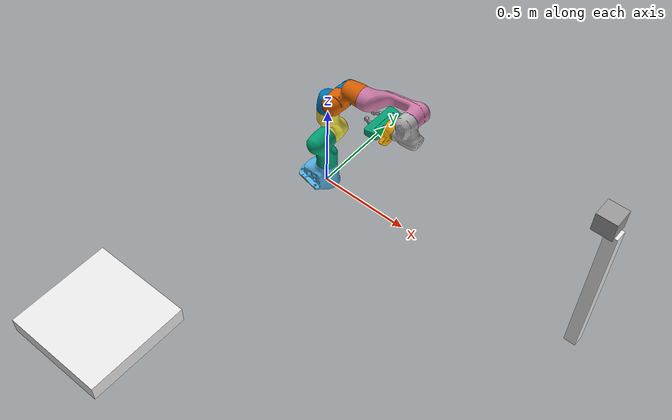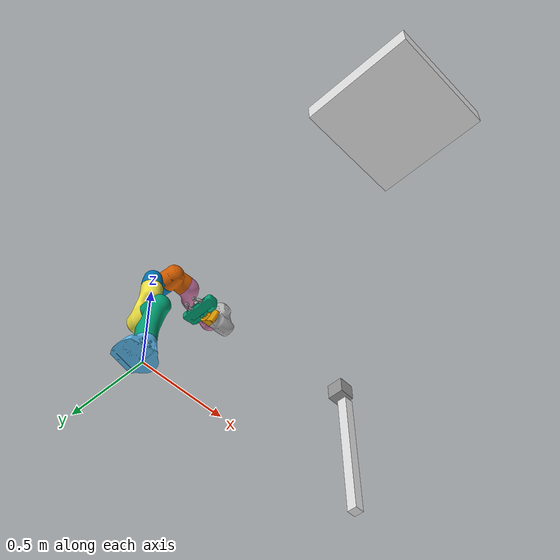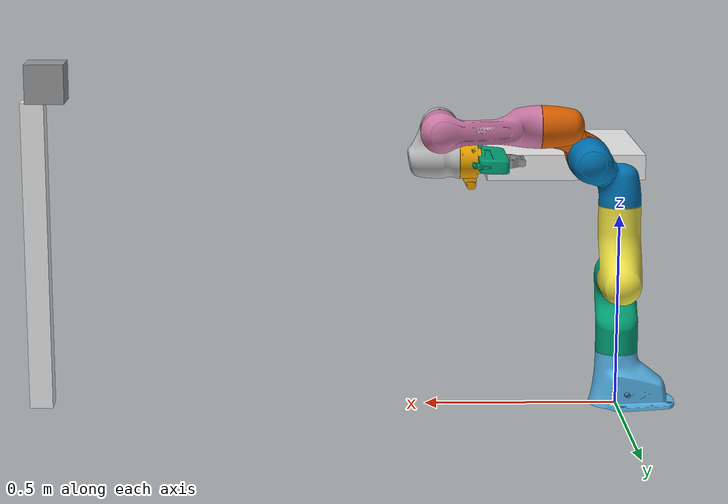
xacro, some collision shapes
<?xml version="1.0" encoding="utf-8"?>
<robot xmlns:xacro="http://www.ros.org/wiki/xacro" name="panda">
  <xacro:include filename="$(find encoderless_robots)/desc/updated_panda_arm.xacro"/>
  <xacro:include filename="$(find encoderless_robots)/desc/updated_hand.xacro"/>
  <xacro:include filename="$(find encoderless_robots)/desc/camera_on_stand.xacro"/>

  <xacro:updated_panda_arm />

  <xacro:updated_hand ns="panda" rpy="0 0 0" connected_to="panda_link8"/>

  <xacro:camera_on_stand />
  <!-- Gazebo control plugin -->
  <gazebo>
    <plugin name="gazebo_ros_control" filename="libmy_gazebo_ros_control.so">
      <robotNamespace>/panda</robotNamespace>
    </plugin>
  </gazebo>

<gazebo reference="panda_leftfinger">
  <material>Gazebo/Gray</material>
</gazebo>

<gazebo reference="panda_rightfinger">
  <material>Gazebo/Gray</material>
</gazebo>

</robot>

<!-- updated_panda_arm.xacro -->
<robot xmlns:xacro="http://www.ros.org/wiki/xacro" name="panda">
  <xacro:macro name="updated_panda_arm" params="arm_id:='panda' description_pkg:='franka_description' connected_to:='' xyz:='0 0 0' rpy:='0 0 0'">

    <xacro:unless value="${not connected_to}">
      <joint name="${arm_id}_joint_${connected_to}" type="fixed">
        <parent link="${connected_to}"/>
        <child link="${arm_id}_link0"/>
        <origin rpy="${rpy}" xyz="${xyz}"/>
      </joint>
    </xacro:unless>

    <link name="world"/>

    <joint name="fixed" type="fixed">
      <parent link="world"/>
      <child link="${arm_id}_link0"/>
    </joint>

    <link name="${arm_id}_link0">
      <visual>
        <geometry>
          <mesh filename="package://${description_pkg}/meshes/visual/link0.dae"/>
        </geometry>
      </visual>
      <collision>
        <geometry>
          <mesh filename="package://${description_pkg}/meshes/collision/link0.stl"/>
        </geometry>
      </collision>
      <inertial>
        <mass value="3.06357" />
        <inertia ixx="0.03" iyy="0.03" izz="0.03" ixy="0.0" ixz="0.0" iyz="0.0" />
      </inertial>
    </link>

    <link name="${arm_id}_link1">
      <visual>
        <geometry>
          <mesh filename="package://${description_pkg}/meshes/visual/link1.dae"/>
        </geometry>
      </visual>
      <collision>
        <geometry>
          <mesh filename="package://${description_pkg}/meshes/collision/link1.stl"/>
        </geometry>
      </collision>
      <inertial>
        <mass value="2.34471" />
        <inertia ixx="0.03" iyy="0.03" izz="0.03" ixy="0.0" ixz="0.0" iyz="0.0" />
      </inertial>
    </link>

    <joint name="${arm_id}_joint1" type="revolute">
      <safety_controller k_position="100.0" k_velocity="40.0" soft_lower_limit="-2.8973" soft_upper_limit="2.8973"/>
      <origin rpy="0 0 0" xyz="0 0 0.333"/>
      <parent link="${arm_id}_link0"/>
      <child link="${arm_id}_link1"/>
      <axis xyz="0 0 1"/>
      <limit effort="87" lower="-2.8973" upper="2.8973" velocity="2.1750"/>
    </joint>

    <link name="${arm_id}_link2">
      <visual>
        <geometry>
          <mesh filename="package://${description_pkg}/meshes/visual/link2.dae"/>
        </geometry>
      </visual>
      <collision>
        <geometry>
          <mesh filename="package://${description_pkg}/meshes/collision/link2.stl"/>
        </geometry>
      </collision>
      <inertial>
        <mass value="2.36414" />
        <inertia ixx="0.03" iyy="0.03" izz="0.03" ixy="0.0" ixz="0.0" iyz="0.0" />
      </inertial>
    </link>

    <joint name="${arm_id}_joint2" type="revolute">
      <safety_controller k_position="100.0" k_velocity="40.0" soft_lower_limit="-1.7628" soft_upper_limit="1.7628"/>
      <origin rpy="${-pi/2} 0 0" xyz="0 0 0"/>
      <parent link="${arm_id}_link1"/>
      <child link="${arm_id}_link2"/>
      <axis xyz="0 0 1"/>
      <limit effort="87" lower="-1.7628" upper="1.7628" velocity="2.1750"/>
    </joint>

    <link name="${arm_id}_link3">
      <visual>
        <geometry>
          <mesh filename="package://${description_pkg}/meshes/visual/link3.dae"/>
        </geometry>
      </visual>
      <collision>
        <geometry>
          <mesh filename="package://${description_pkg}/meshes/collision/link3.stl"/>
        </geometry>
      </collision>
      <inertial>
        <mass value="2.38050" />
        <inertia ixx="0.03" iyy="0.03" izz="0.03" ixy="0.0" ixz="0.0" iyz="0.0" />
      </inertial>
    </link>

    <joint name="${arm_id}_joint3" type="revolute">
      <safety_controller k_position="100.0" k_velocity="40.0" soft_lower_limit="-2.8973" soft_upper_limit="2.8973"/>
      <origin rpy="${pi/2} 0 0" xyz="0 -0.316 0"/>
      <parent link="${arm_id}_link2"/>
      <child link="${arm_id}_link3"/>
      <axis xyz="0 0 1"/>
      <limit effort="87" lower="-2.8973" upper="2.8973" velocity="2.1750"/>
    </joint>

    <link name="${arm_id}_link4">
      <visual>
        <geometry>
          <mesh filename="package://${description_pkg}/meshes/visual/link4.dae"/>
        </geometry>
      </visual>
      <collision>
        <geometry>
          <mesh filename="package://${description_pkg}/meshes/collision/link4.stl"/>
        </geometry>
      </collision>
      <inertial>
        <mass value="2.42754" />
        <inertia ixx="0.03" iyy="0.03" izz="0.03" ixy="0.0" ixz="0.0" iyz="0.0" />
      </inertial>
    </link>

    <joint name="${arm_id}_joint4" type="revolute">
      <safety_controller k_position="100.0" k_velocity="40.0" soft_lower_limit="-3.0718" soft_upper_limit="-0.0698"/>
      <origin rpy="${pi/2} 0 0" xyz="0.0825 0 0"/>
      <parent link="${arm_id}_link3"/>
      <child link="${arm_id}_link4"/>
      <axis xyz="0 0 1"/>
      <limit effort="87" lower="-3.0718" upper="-0.0698" velocity="2.1750"/>
    </joint>

    <link name="${arm_id}_link5">
      <visual>
        <geometry>
          <mesh filename="package://${description_pkg}/meshes/visual/link5.dae"/>
        </geometry>
      </visual>
      <collision>
        <geometry>
          <mesh filename="package://${description_pkg}/meshes/collision/link5.stl"/>
        </geometry>
      </collision>
      <inertial>
        <mass value="3.49611" />
        <inertia ixx="0.03" iyy="0.03" izz="0.03" ixy="0.0" ixz="0.0" iyz="0.0" />
      </inertial>
    </link>

    <joint name="${arm_id}_joint5" type="revolute">
      <safety_controller k_position="100.0" k_velocity="40.0" soft_lower_limit="-2.8973" soft_upper_limit="2.8973"/>
      <origin rpy="${-pi/2} 0 0" xyz="-0.0825 0.384 0"/>
      <parent link="${arm_id}_link4"/>
      <child link="${arm_id}_link5"/>
      <axis xyz="0 0 1"/>
      <limit effort="12" lower="-2.8973" upper="2.8973" velocity="2.6100"/>
    </joint>

    <link name="${arm_id}_link6">
      <visual>
        <geometry>
          <mesh filename="package://${description_pkg}/meshes/visual/link6.dae"/>
        </geometry>
      </visual>
      <collision>
        <geometry>
          <mesh filename="package://${description_pkg}/meshes/collision/link6.stl"/>
        </geometry>
      </collision>
      <inertial>
        <mass value="1.46736" />
        <inertia ixx="0.03" iyy="0.03" izz="0.03" ixy="0.0" ixz="0.0" iyz="0.0" />
      </inertial>
    </link>

    <joint name="${arm_id}_joint6" type="revolute">
      <safety_controller k_position="100.0" k_velocity="40.0" soft_lower_limit="-0.0175" soft_upper_limit="3.7525"/>
      <origin rpy="${pi/2} 0 0" xyz="0 0 0"/>
      <parent link="${arm_id}_link5"/>
      <child link="${arm_id}_link6"/>
      <axis xyz="0 0 1"/>
      <limit effort="12" lower="-0.0175" upper="3.7525" velocity="2.6100"/>
    </joint>

    <link name="${arm_id}_link7">
      <visual>
        <geometry>
          <mesh filename="package://${description_pkg}/meshes/visual/link7.dae"/>
        </geometry>
      </visual>
      <collision>
        <geometry>
          <mesh filename="package://${description_pkg}/meshes/collision/link7.stl"/>
        </geometry>
      </collision>
      <inertial>
        <mass value="0.45606" />
        <inertia ixx="0.03" iyy="0.03" izz="0.03" ixy="0.0" ixz="0.0" iyz="0.0" />
      </inertial>
    </link>

    <joint name="${arm_id}_joint7" type="revolute">
      <safety_controller k_position="100.0" k_velocity="40.0" soft_lower_limit="-2.8973" soft_upper_limit="2.8973"/>
      <origin rpy="${pi/2} 0 0" xyz="0.088 0 0"/>
      <parent link="${arm_id}_link6"/>
      <child link="${arm_id}_link7"/>
      <axis xyz="0 0 1"/>
      <limit effort="12" lower="-2.8973" upper="2.8973" velocity="2.6100"/>
    </joint>

    <link name="${arm_id}_link8"/>

    <joint name="${arm_id}_joint8" type="fixed">
      <origin rpy="0 0 0" xyz="0 0 0.107"/>
      <parent link="${arm_id}_link7"/>
      <child link="${arm_id}_link8"/>
      <axis xyz="0 0 0"/>
    </joint>

    <!-- Transmissions of the robot arm - to be able to move each joint ============== -->
    <transmission name="tran1">
      <type>transmission_interface/SimpleTransmission</type>
      <joint name="${arm_id}_joint1">
	<hardwareInterface>hardware_interface/EffortJointInterface</hardwareInterface>
      </joint>
      <actuator name="motor1">
	<hardwareInterface>hardware_interface/EffortJointInterface</hardwareInterface>
	<mechanicalReduction>1</mechanicalReduction>
      </actuator>
    </transmission>

    <transmission name="tran2">
      <type>transmission_interface/SimpleTransmission</type>
      <joint name="${arm_id}_joint2">
	<hardwareInterface>hardware_interface/EffortJointInterface</hardwareInterface>
      </joint>
      <actuator name="motor2">
	<hardwareInterface>hardware_interface/EffortJointInterface</hardwareInterface>
	<mechanicalReduction>1</mechanicalReduction>
      </actuator>
    </transmission>

    <transmission name="tran3">
      <type>transmission_interface/SimpleTransmission</type>
      <joint name="${arm_id}_joint3">
	<hardwareInterface>hardware_interface/EffortJointInterface</hardwareInterface>
      </joint>
      <actuator name="motor3">
	<hardwareInterface>hardware_interface/EffortJointInterface</hardwareInterface>
	<mechanicalReduction>1</mechanicalReduction>
      </actuator>
    </transmission>

    <transmission name="tran4">
      <type>transmission_interface/SimpleTransmission</type>
      <joint name="${arm_id}_joint4">
	<hardwareInterface>hardware_interface/EffortJointInterface</hardwareInterface>
      </joint>
      <actuator name="motor4">
	<hardwareInterface>hardware_interface/EffortJointInterface</hardwareInterface>
	<mechanicalReduction>1</mechanicalReduction>
      </actuator>
    </transmission>

    <transmission name="tran5">
      <type>transmission_interface/SimpleTransmission</type>
      <joint name="${arm_id}_joint5">
	<hardwareInterface>hardware_interface/EffortJointInterface</hardwareInterface>
      </joint>
      <actuator name="motor5">
	<hardwareInterface>hardware_interface/EffortJointInterface</hardwareInterface>
	<mechanicalReduction>1</mechanicalReduction>
      </actuator>
    </transmission>

    <transmission name="tran6">
      <type>transmission_interface/SimpleTransmission</type>
      <joint name="${arm_id}_joint6">
	<hardwareInterface>hardware_interface/EffortJointInterface</hardwareInterface>
      </joint>
      <actuator name="motor6">
	<hardwareInterface>hardware_interface/EffortJointInterface</hardwareInterface>
	<mechanicalReduction>1</mechanicalReduction>
      </actuator>
    </transmission>

    <transmission name="tran7">
      <type>transmission_interface/SimpleTransmission</type>
      <joint name="${arm_id}_joint7">
	<hardwareInterface>hardware_interface/EffortJointInterface</hardwareInterface>
      </joint>
      <actuator name="motor7">
	<hardwareInterface>hardware_interface/EffortJointInterface</hardwareInterface>
	<mechanicalReduction>1</mechanicalReduction>
      </actuator>
    </transmission>
  </xacro:macro>

</robot>

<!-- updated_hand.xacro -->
<robot xmlns:xacro="http://www.ros.org/wiki/xacro" name="hand">
  <xacro:macro name="updated_hand" params="connected_to:='' ns:='' rpy:='0 0 0' xyz:='0 0 0' ">
    <xacro:unless value="${connected_to == ''}">
      <joint name="${ns}_hand_joint" type="fixed">
        <parent link="${connected_to}"/>
        <child link="${ns}_hand"/>
        <origin xyz="${xyz}" rpy="${rpy}"/>
      </joint>
    </xacro:unless>
    <link name="${ns}_hand">
      <visual>
        <geometry>
          <mesh filename="package://franka_description/meshes/visual/hand.dae"/>
        </geometry>
      </visual>
      <collision>
        <geometry>
          <mesh filename="package://franka_description/meshes/collision/hand.stl"/>
        </geometry>
      </collision>
	<inertial>
            <mass value="0.67893" />
            <inertia ixx="0.03" iyy="0.03" izz="0.03" ixy="0.0" ixz="0.0" iyz="0.0" />
        </inertial>
    </link>
    <link name="${ns}_leftfinger">
      <visual>
        <geometry>
          <mesh filename="package://franka_description/meshes/visual/finger.dae"/>
        </geometry>
      </visual>
      <collision>
        <geometry>
          <mesh filename="package://franka_description/meshes/collision/finger.stl"/>
        </geometry>
      </collision>
	<inertial>
            <mass value="0.01053" />
            <inertia ixx="0.03" iyy="0.03" izz="0.03" ixy="0.0" ixz="0.0" iyz="0.0" />
        </inertial>
    </link>
    <link name="${ns}_rightfinger">
      <visual>
        <origin xyz="0 0 0" rpy="0 0 ${pi}"/>
        <geometry>
          <mesh filename="package://franka_description/meshes/visual/finger.dae"/>
        </geometry>
      </visual>
      <collision>
        <origin xyz="0 0 0" rpy="0 0 ${pi}"/>
        <geometry>
          <mesh filename="package://franka_description/meshes/collision/finger.stl"/>
        </geometry>
      </collision>
	<inertial>
            <mass value="0.01053" />
            <inertia ixx="0.03" iyy="0.03" izz="0.03" ixy="0.0" ixz="0.0" iyz="0.0" />
        </inertial>
    </link>

  <gazebo reference="panda_leftfinger">
    <kp>1000000.0</kp>
    <kd>1.0</kd>
    <mu1>100000.0</mu1>
    <mu2>100000.0</mu2>
    <minDepth>0.001</minDepth>
  </gazebo>
  <gazebo reference="panda_rightfinger">
    <kp>1000000.0</kp>
    <kd>1.0</kd>
    <mu1>100000.0</mu1>
    <mu2>100000.0</mu2>
    <minDepth>0.001</minDepth>
  </gazebo>

    <joint name="${ns}_finger_joint1" type="fixed">
      <parent link="${ns}_hand"/>
      <child link="${ns}_leftfinger"/>
      <origin xyz="0 0.02 0.0584" rpy="0 0 0"/>
      <axis xyz="0 1 0"/>
    </joint>
    <joint name="${ns}_finger_joint2" type="fixed">
      <parent link="${ns}_hand"/>
      <child link="${ns}_rightfinger"/>
      <origin xyz="0 -0.02 0.0584" rpy="0 0 0"/>
      <axis xyz="0 -1 0"/>
    </joint>

  </xacro:macro>
</robot>

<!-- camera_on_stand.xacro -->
<robot xmlns:xacro="http://www.ros.org/wiki/xacro" name="camera_on_stand">

  <xacro:macro name="camera_on_stand">

    <gazebo reference="camera_link">
        <sensor type="depth" name="camera_link">
          <always_on>1</always_on>
          <visualize>true</visualize>
          <update_rate>20</update_rate>
          <camera>
            <horizontal_fov>1.4397198</horizontal_fov>
            <image>
              <width>800</width>
              <height>800</height>
              <format>R8G8B8</format>  <!--Changed format since channels were inverted, to go back, change to R8G8B8-->
            </image>
            <clip>
              <near>0.02</near>
              <far>300</far>
            </clip>
            <noise>   <!-- This does apparently nothing neither RGB nor depth-->
              <type>gaussian</type>
              <mean>0.0</mean>
              <stddev>5.0</stddev>
          </noise>
          </camera>

          <plugin name="camera_controller" filename="libgazebo_ros_openni_kinect.so">
            <baseline>0.2</baseline>
            <alwaysOn>true</alwaysOn>
            <updateRate>120</updateRate>
            <cameraName>/camera_link</cameraName>
            <imageTopicName>/camera_link/rgb/image_raw</imageTopicName>
            <cameraInfoTopicName>/camera_link/rgb/camera_info</cameraInfoTopicName>
            <depthImageTopicName>/camera_link/depth/image_raw</depthImageTopicName>
            <depthImageInfoTopicName>/camera_link/depth/camera_info</depthImageInfoTopicName>
            <pointCloudTopicName>/camera_link/depth/points</pointCloudTopicName>
            <frameName>camera_link_optical</frameName>
            <pointCloudCutoff>0.5</pointCloudCutoff>
            <pointCloudCutoffMax>3</pointCloudCutoffMax>
            <distortionK1>0</distortionK1>
            <distortionK2>0</distortionK2>
            <distortionK3>0</distortionK3>
            <distortionT1>0</distortionT1>
            <distortionT2>0</distortionT2>
            <CxPrime>0</CxPrime>
            <Cx>0</Cx>
            <Cy>0</Cy>
            <focalLength>0</focalLength>
            <hackBaseline>0</hackBaseline>
          </plugin>
            </sensor>
          </gazebo>
      <link name="stand">
          <visual>
                <geometry>
                  <box size="0.06 0.06 0.8"/>
                </geometry>
                <origin rpy="0 0 0" xyz="0 0 0.4"/>
                <material name="white"/>
              </visual>
              <inertial>
                  <mass value="0.1"/>
                  <inertia ixx="0.03" ixy="0.0" ixz="0.0" iyy="0.03" iyz="0.0" izz="0.03"/>
              </inertial>

        </link>
        <joint name="fixed_stand" type="fixed">
          <origin xyz="1.5 0 0" rpy="0 0 0"/>
              <parent link="world"/>
              <child link="stand"/>
        </joint>
        <link name="camera_link">
          <visual>
              <origin xyz="0 0 0" rpy="0 0 0"/>
               <geometry>
                <mesh filename="package://encoderless_robots/meshes/kinect.dae"/>

               </geometry>
             </visual>
               <collision>
               <origin xyz="0.0 0.0 0.0" rpy="0 0 0"/>
                 <geometry>
                   <box size="0.1 0.1 0.1"/>
                 </geometry>
               </collision>
             <inertial>
               <mass value="0.5" />
               <origin xyz="0 0 0" />
               <inertia ixx="0.003881243" ixy="0.0" ixz="0.0"
                        iyy="0.000498940" iyz="0.0"
                        izz="0.003879257" />
             </inertial>

          </link>
          <link name="camera_link_optical"/>
          <joint name="camera_depth_optical_joint" type="fixed">
              <origin xyz="0 0 0.85" rpy="0 0 3.14"/>
                  <parent link="camera_link"/>
                  <child link="camera_link_optical"/>
            </joint>
        <joint name="fixed_camera" type="fixed">
          <origin xyz="-0.035 0 0.85" rpy="0 0 3.14159"/>
              <parent link="stand"/>
              <child link="camera_link"/>
        </joint>

        <link name="table">
          <visual>
                <geometry>
                  <box size="0.5 0.5 0.08"/>
                </geometry>
                <origin rpy="0 0 0" xyz="0 0 0"/>
                <material name="white"/>
              </visual>
              <inertial>
                  <mass value="0.1"/>
                  <inertia ixx="0.03" ixy="0.0" ixz="0.0" iyy="0.03" iyz="0.0" izz="0.03"/>
              </inertial>
        </link>
        <joint name="fixed_table" type="fixed">
          <origin xyz="0 -1.5 0.4" rpy="0 0 0"/>
              <parent link="world"/>
              <child link="table"/>
        </joint>
        <gazebo reference="stand">
          <material>Gazebo/Black</material>
        </gazebo>
        <gazebo reference="camera_link">
          <material>Gazebo/Gray</material>
        </gazebo>
</xacro:macro>

</robot>
